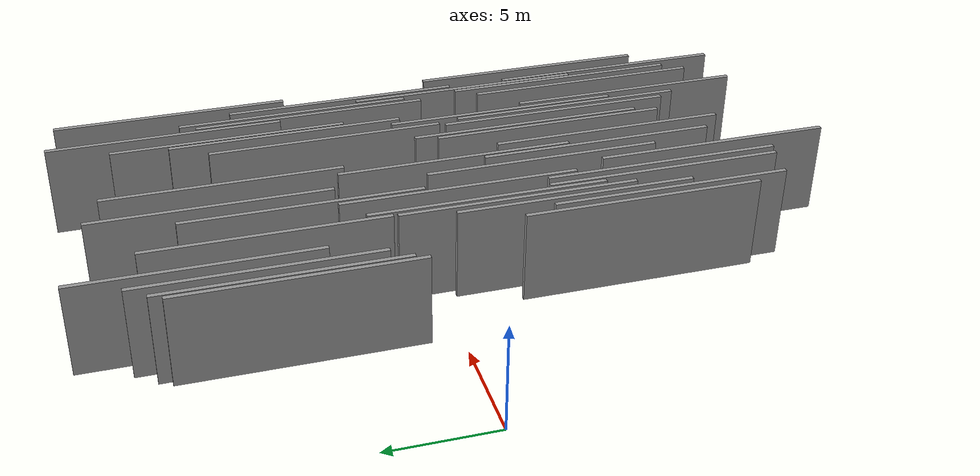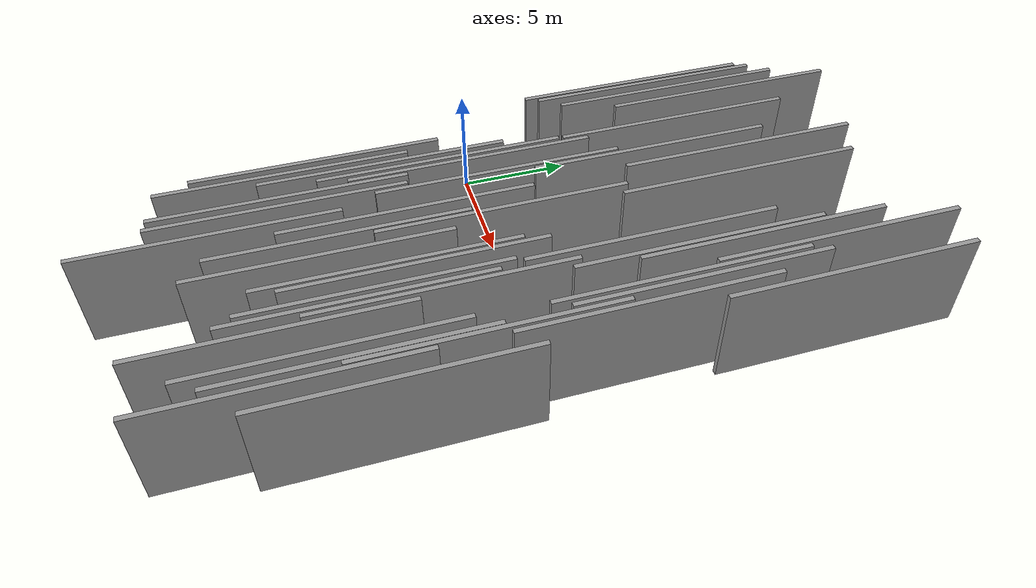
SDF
<sdf version="1.6">
 <world name="default">
  <scene>
   <sky><clouds><speed>12</speed></clouds></sky>
   <ambient>0.4 0.4 0.4 1</ambient>
   <background>0.7 0.7 0.7 1</background>
   <shadows>1</shadows>
  </scene>
  <gravity>0 0 -9.8066</gravity>
  <magnetic_field>6e-06 2.3e-05 -4.2e-05</magnetic_field>
  <physics default="0" name="default_physics" type="ode">
   <ode>
    <solver>
     <type>quick</type>
     <iters>10</iters>
     <sor>1.0</sor>
     <use_dynamic_moi_rescaling>0</use_dynamic_moi_rescaling>
    </solver>
    <constraints>
     <cfm>0</cfm>
     <erp>0.2</erp>
     <contact_max_correcting_vel>100</contact_max_correcting_vel>
     <contact_surface_layer>0.001</contact_surface_layer>
    </constraints>
   </ode>
   <max_step_size>0.004</max_step_size>
   <real_time_factor>1</real_time_factor>
   <real_time_update_rate>250</real_time_update_rate>
  </physics>
  <light name="sun" type="directional">
   <pose>0 0 10 0 0 0</pose>
   <diffuse>0.8 0.8 0.8 1</diffuse>
   <specular>0.2 0.2 0.2 1</specular>
   <attenuation>
    <range>1000</range>
    <constant>0.9</constant>
    <linear>0.01</linear>
    <quadratic>0.001</quadratic>
   </attenuation>
   <direction>-0.5 0.1 -0.9</direction>
  </light>
  <model name="grey_wall_1">
   <static>1</static>
   <pose>5.2713 -8.5533 2.5 0.000000 0.000000 1.570796</pose>
   <link name="link">
    <pose>0 0 2.00 0 0 0</pose>
    <collision name="collision"><geometry><box><size>10.00 0.2 4.00</size></box></geometry></collision>
    <visual name="visual">
     <cast_shadows>0</cast_shadows>
     <geometry><box><size>10.00 0.2 4.00</size></box></geometry>
     <material>
      <script>
       <uri>model://grey_wall/materials/scripts</uri>
       <uri>model://grey_wall/materials/textures</uri>
       <name>vrc/grey_wall</name>
      </script>
     </material>
    </visual>
   </link>
  </model>
  <model name="grey_wall_2">
   <static>1</static>
   <pose>3.8967 8.5115 2.5 0.000000 0.000000 1.570796</pose>
   <link name="link">
    <pose>0 0 2.00 0 0 0</pose>
    <collision name="collision"><geometry><box><size>10.00 0.2 4.00</size></box></geometry></collision>
    <visual name="visual">
     <cast_shadows>0</cast_shadows>
     <geometry><box><size>10.00 0.2 4.00</size></box></geometry>
     <material>
      <script>
       <uri>model://grey_wall/materials/scripts</uri>
       <uri>model://grey_wall/materials/textures</uri>
       <name>vrc/grey_wall</name>
      </script>
     </material>
    </visual>
   </link>
  </model>
  <model name="grey_wall_3">
   <static>1</static>
   <pose>16.6424 10.2966 2.5 0.000000 0.000000 1.570796</pose>
   <link name="link">
    <pose>0 0 2.00 0 0 0</pose>
    <collision name="collision"><geometry><box><size>10.00 0.2 4.00</size></box></geometry></collision>
    <visual name="visual">
     <cast_shadows>0</cast_shadows>
     <geometry><box><size>10.00 0.2 4.00</size></box></geometry>
     <material>
      <script>
       <uri>model://grey_wall/materials/scripts</uri>
       <uri>model://grey_wall/materials/textures</uri>
       <name>vrc/grey_wall</name>
      </script>
     </material>
    </visual>
   </link>
  </model>
  <model name="grey_wall_4">
   <static>1</static>
   <pose>8.7333 9.6387 2.5 0.000000 0.000000 1.570796</pose>
   <link name="link">
    <pose>0 0 2.00 0 0 0</pose>
    <collision name="collision"><geometry><box><size>10.00 0.2 4.00</size></box></geometry></collision>
    <visual name="visual">
     <cast_shadows>0</cast_shadows>
     <geometry><box><size>10.00 0.2 4.00</size></box></geometry>
     <material>
      <script>
       <uri>model://grey_wall/materials/scripts</uri>
       <uri>model://grey_wall/materials/textures</uri>
       <name>vrc/grey_wall</name>
      </script>
     </material>
    </visual>
   </link>
  </model>
  <model name="grey_wall_5">
   <static>1</static>
   <pose>9.7830 -0.7278 2.5 0.000000 0.000000 1.570796</pose>
   <link name="link">
    <pose>0 0 2.00 0 0 0</pose>
    <collision name="collision"><geometry><box><size>10.00 0.2 4.00</size></box></geometry></collision>
    <visual name="visual">
     <cast_shadows>0</cast_shadows>
     <geometry><box><size>10.00 0.2 4.00</size></box></geometry>
     <material>
      <script>
       <uri>model://grey_wall/materials/scripts</uri>
       <uri>model://grey_wall/materials/textures</uri>
       <name>vrc/grey_wall</name>
      </script>
     </material>
    </visual>
   </link>
  </model>
  <model name="grey_wall_6">
   <static>1</static>
   <pose>11.8643 -4.5365 2.5 0.000000 0.000000 1.570796</pose>
   <link name="link">
    <pose>0 0 2.00 0 0 0</pose>
    <collision name="collision"><geometry><box><size>10.00 0.2 4.00</size></box></geometry></collision>
    <visual name="visual">
     <cast_shadows>0</cast_shadows>
     <geometry><box><size>10.00 0.2 4.00</size></box></geometry>
     <material>
      <script>
       <uri>model://grey_wall/materials/scripts</uri>
       <uri>model://grey_wall/materials/textures</uri>
       <name>vrc/grey_wall</name>
      </script>
     </material>
    </visual>
   </link>
  </model>
  <model name="grey_wall_7">
   <static>1</static>
   <pose>9.5290 -6.9343 2.5 0.000000 0.000000 1.570796</pose>
   <link name="link">
    <pose>0 0 2.00 0 0 0</pose>
    <collision name="collision"><geometry><box><size>10.00 0.2 4.00</size></box></geometry></collision>
    <visual name="visual">
     <cast_shadows>0</cast_shadows>
     <geometry><box><size>10.00 0.2 4.00</size></box></geometry>
     <material>
      <script>
       <uri>model://grey_wall/materials/scripts</uri>
       <uri>model://grey_wall/materials/textures</uri>
       <name>vrc/grey_wall</name>
      </script>
     </material>
    </visual>
   </link>
  </model>
  <model name="grey_wall_8">
   <static>1</static>
   <pose>3.0202 7.1427 2.5 0.000000 0.000000 1.570796</pose>
   <link name="link">
    <pose>0 0 2.00 0 0 0</pose>
    <collision name="collision"><geometry><box><size>10.00 0.2 4.00</size></box></geometry></collision>
    <visual name="visual">
     <cast_shadows>0</cast_shadows>
     <geometry><box><size>10.00 0.2 4.00</size></box></geometry>
     <material>
      <script>
       <uri>model://grey_wall/materials/scripts</uri>
       <uri>model://grey_wall/materials/textures</uri>
       <name>vrc/grey_wall</name>
      </script>
     </material>
    </visual>
   </link>
  </model>
  <model name="grey_wall_9">
   <static>1</static>
   <pose>8.1527 -11.6367 2.5 0.000000 0.000000 1.570796</pose>
   <link name="link">
    <pose>0 0 2.00 0 0 0</pose>
    <collision name="collision"><geometry><box><size>10.00 0.2 4.00</size></box></geometry></collision>
    <visual name="visual">
     <cast_shadows>0</cast_shadows>
     <geometry><box><size>10.00 0.2 4.00</size></box></geometry>
     <material>
      <script>
       <uri>model://grey_wall/materials/scripts</uri>
       <uri>model://grey_wall/materials/textures</uri>
       <name>vrc/grey_wall</name>
      </script>
     </material>
    </visual>
   </link>
  </model>
  <model name="grey_wall_10">
   <static>1</static>
   <pose>13.0097 -6.7541 2.5 0.000000 0.000000 1.570796</pose>
   <link name="link">
    <pose>0 0 2.00 0 0 0</pose>
    <collision name="collision"><geometry><box><size>10.00 0.2 4.00</size></box></geometry></collision>
    <visual name="visual">
     <cast_shadows>0</cast_shadows>
     <geometry><box><size>10.00 0.2 4.00</size></box></geometry>
     <material>
      <script>
       <uri>model://grey_wall/materials/scripts</uri>
       <uri>model://grey_wall/materials/textures</uri>
       <name>vrc/grey_wall</name>
      </script>
     </material>
    </visual>
   </link>
  </model>
  <model name="grey_wall_11">
   <static>1</static>
   <pose>12.6420 -6.0958 2.5 0.000000 0.000000 1.570796</pose>
   <link name="link">
    <pose>0 0 2.00 0 0 0</pose>
    <collision name="collision"><geometry><box><size>10.00 0.2 4.00</size></box></geometry></collision>
    <visual name="visual">
     <cast_shadows>0</cast_shadows>
     <geometry><box><size>10.00 0.2 4.00</size></box></geometry>
     <material>
      <script>
       <uri>model://grey_wall/materials/scripts</uri>
       <uri>model://grey_wall/materials/textures</uri>
       <name>vrc/grey_wall</name>
      </script>
     </material>
    </visual>
   </link>
  </model>
  <model name="grey_wall_12">
   <static>1</static>
   <pose>6.7252 -8.8303 2.5 0.000000 0.000000 1.570796</pose>
   <link name="link">
    <pose>0 0 2.00 0 0 0</pose>
    <collision name="collision"><geometry><box><size>10.00 0.2 4.00</size></box></geometry></collision>
    <visual name="visual">
     <cast_shadows>0</cast_shadows>
     <geometry><box><size>10.00 0.2 4.00</size></box></geometry>
     <material>
      <script>
       <uri>model://grey_wall/materials/scripts</uri>
       <uri>model://grey_wall/materials/textures</uri>
       <name>vrc/grey_wall</name>
      </script>
     </material>
    </visual>
   </link>
  </model>
  <model name="grey_wall_13">
   <static>1</static>
   <pose>7.8189 6.1054 2.5 0.000000 0.000000 1.570796</pose>
   <link name="link">
    <pose>0 0 2.00 0 0 0</pose>
    <collision name="collision"><geometry><box><size>10.00 0.2 4.00</size></box></geometry></collision>
    <visual name="visual">
     <cast_shadows>0</cast_shadows>
     <geometry><box><size>10.00 0.2 4.00</size></box></geometry>
     <material>
      <script>
       <uri>model://grey_wall/materials/scripts</uri>
       <uri>model://grey_wall/materials/textures</uri>
       <name>vrc/grey_wall</name>
      </script>
     </material>
    </visual>
   </link>
  </model>
  <model name="grey_wall_14">
   <static>1</static>
   <pose>15.4493 5.0505 2.5 0.000000 0.000000 1.570796</pose>
   <link name="link">
    <pose>0 0 2.00 0 0 0</pose>
    <collision name="collision"><geometry><box><size>10.00 0.2 4.00</size></box></geometry></collision>
    <visual name="visual">
     <cast_shadows>0</cast_shadows>
     <geometry><box><size>10.00 0.2 4.00</size></box></geometry>
     <material>
      <script>
       <uri>model://grey_wall/materials/scripts</uri>
       <uri>model://grey_wall/materials/textures</uri>
       <name>vrc/grey_wall</name>
      </script>
     </material>
    </visual>
   </link>
  </model>
  <model name="grey_wall_15">
   <static>1</static>
   <pose>6.4507 -1.1667 2.5 0.000000 0.000000 1.570796</pose>
   <link name="link">
    <pose>0 0 2.00 0 0 0</pose>
    <collision name="collision"><geometry><box><size>10.00 0.2 4.00</size></box></geometry></collision>
    <visual name="visual">
     <cast_shadows>0</cast_shadows>
     <geometry><box><size>10.00 0.2 4.00</size></box></geometry>
     <material>
      <script>
       <uri>model://grey_wall/materials/scripts</uri>
       <uri>model://grey_wall/materials/textures</uri>
       <name>vrc/grey_wall</name>
      </script>
     </material>
    </visual>
   </link>
  </model>
  <model name="grey_wall_16">
   <static>1</static>
   <pose>16.0371 2.7760 2.5 0.000000 0.000000 1.570796</pose>
   <link name="link">
    <pose>0 0 2.00 0 0 0</pose>
    <collision name="collision"><geometry><box><size>10.00 0.2 4.00</size></box></geometry></collision>
    <visual name="visual">
     <cast_shadows>0</cast_shadows>
     <geometry><box><size>10.00 0.2 4.00</size></box></geometry>
     <material>
      <script>
       <uri>model://grey_wall/materials/scripts</uri>
       <uri>model://grey_wall/materials/textures</uri>
       <name>vrc/grey_wall</name>
      </script>
     </material>
    </visual>
   </link>
  </model>
  <model name="grey_wall_17">
   <static>1</static>
   <pose>5.7087 -4.6302 2.5 0.000000 0.000000 1.570796</pose>
   <link name="link">
    <pose>0 0 2.00 0 0 0</pose>
    <collision name="collision"><geometry><box><size>10.00 0.2 4.00</size></box></geometry></collision>
    <visual name="visual">
     <cast_shadows>0</cast_shadows>
     <geometry><box><size>10.00 0.2 4.00</size></box></geometry>
     <material>
      <script>
       <uri>model://grey_wall/materials/scripts</uri>
       <uri>model://grey_wall/materials/textures</uri>
       <name>vrc/grey_wall</name>
      </script>
     </material>
    </visual>
   </link>
  </model>
  <model name="grey_wall_18">
   <static>1</static>
   <pose>10.4403 -7.7712 2.5 0.000000 0.000000 1.570796</pose>
   <link name="link">
    <pose>0 0 2.00 0 0 0</pose>
    <collision name="collision"><geometry><box><size>10.00 0.2 4.00</size></box></geometry></collision>
    <visual name="visual">
     <cast_shadows>0</cast_shadows>
     <geometry><box><size>10.00 0.2 4.00</size></box></geometry>
     <material>
      <script>
       <uri>model://grey_wall/materials/scripts</uri>
       <uri>model://grey_wall/materials/textures</uri>
       <name>vrc/grey_wall</name>
      </script>
     </material>
    </visual>
   </link>
  </model>
  <model name="grey_wall_19">
   <static>1</static>
   <pose>10.3066 8.9108 2.5 0.000000 0.000000 1.570796</pose>
   <link name="link">
    <pose>0 0 2.00 0 0 0</pose>
    <collision name="collision"><geometry><box><size>10.00 0.2 4.00</size></box></geometry></collision>
    <visual name="visual">
     <cast_shadows>0</cast_shadows>
     <geometry><box><size>10.00 0.2 4.00</size></box></geometry>
     <material>
      <script>
       <uri>model://grey_wall/materials/scripts</uri>
       <uri>model://grey_wall/materials/textures</uri>
       <name>vrc/grey_wall</name>
      </script>
     </material>
    </visual>
   </link>
  </model>
  <model name="grey_wall_20">
   <static>1</static>
   <pose>11.5906 -5.4856 2.5 0.000000 0.000000 1.570796</pose>
   <link name="link">
    <pose>0 0 2.00 0 0 0</pose>
    <collision name="collision"><geometry><box><size>10.00 0.2 4.00</size></box></geometry></collision>
    <visual name="visual">
     <cast_shadows>0</cast_shadows>
     <geometry><box><size>10.00 0.2 4.00</size></box></geometry>
     <material>
      <script>
       <uri>model://grey_wall/materials/scripts</uri>
       <uri>model://grey_wall/materials/textures</uri>
       <name>vrc/grey_wall</name>
      </script>
     </material>
    </visual>
   </link>
  </model>
  <model name="grey_wall_21">
   <static>1</static>
   <pose>14.9636 -8.2210 2.5 0.000000 0.000000 1.570796</pose>
   <link name="link">
    <pose>0 0 2.00 0 0 0</pose>
    <collision name="collision"><geometry><box><size>10.00 0.2 4.00</size></box></geometry></collision>
    <visual name="visual">
     <cast_shadows>0</cast_shadows>
     <geometry><box><size>10.00 0.2 4.00</size></box></geometry>
     <material>
      <script>
       <uri>model://grey_wall/materials/scripts</uri>
       <uri>model://grey_wall/materials/textures</uri>
       <name>vrc/grey_wall</name>
      </script>
     </material>
    </visual>
   </link>
  </model>
  <model name="grey_wall_22">
   <static>1</static>
   <pose>6.1634 7.8232 2.5 0.000000 0.000000 1.570796</pose>
   <link name="link">
    <pose>0 0 2.00 0 0 0</pose>
    <collision name="collision"><geometry><box><size>10.00 0.2 4.00</size></box></geometry></collision>
    <visual name="visual">
     <cast_shadows>0</cast_shadows>
     <geometry><box><size>10.00 0.2 4.00</size></box></geometry>
     <material>
      <script>
       <uri>model://grey_wall/materials/scripts</uri>
       <uri>model://grey_wall/materials/textures</uri>
       <name>vrc/grey_wall</name>
      </script>
     </material>
    </visual>
   </link>
  </model>
  <model name="grey_wall_23">
   <static>1</static>
   <pose>7.5373 -0.2787 2.5 0.000000 0.000000 1.570796</pose>
   <link name="link">
    <pose>0 0 2.00 0 0 0</pose>
    <collision name="collision"><geometry><box><size>10.00 0.2 4.00</size></box></geometry></collision>
    <visual name="visual">
     <cast_shadows>0</cast_shadows>
     <geometry><box><size>10.00 0.2 4.00</size></box></geometry>
     <material>
      <script>
       <uri>model://grey_wall/materials/scripts</uri>
       <uri>model://grey_wall/materials/textures</uri>
       <name>vrc/grey_wall</name>
      </script>
     </material>
    </visual>
   </link>
  </model>
  <model name="grey_wall_24">
   <static>1</static>
   <pose>13.6921 5.7042 2.5 0.000000 0.000000 1.570796</pose>
   <link name="link">
    <pose>0 0 2.00 0 0 0</pose>
    <collision name="collision"><geometry><box><size>10.00 0.2 4.00</size></box></geometry></collision>
    <visual name="visual">
     <cast_shadows>0</cast_shadows>
     <geometry><box><size>10.00 0.2 4.00</size></box></geometry>
     <material>
      <script>
       <uri>model://grey_wall/materials/scripts</uri>
       <uri>model://grey_wall/materials/textures</uri>
       <name>vrc/grey_wall</name>
      </script>
     </material>
    </visual>
   </link>
  </model>
  <model name="grey_wall_25">
   <static>1</static>
   <pose>13.2804 -3.8519 2.5 0.000000 0.000000 1.570796</pose>
   <link name="link">
    <pose>0 0 2.00 0 0 0</pose>
    <collision name="collision"><geometry><box><size>10.00 0.2 4.00</size></box></geometry></collision>
    <visual name="visual">
     <cast_shadows>0</cast_shadows>
     <geometry><box><size>10.00 0.2 4.00</size></box></geometry>
     <material>
      <script>
       <uri>model://grey_wall/materials/scripts</uri>
       <uri>model://grey_wall/materials/textures</uri>
       <name>vrc/grey_wall</name>
      </script>
     </material>
    </visual>
   </link>
  </model>
  <model name="grey_wall_26">
   <static>1</static>
   <pose>7.2387 -8.9486 2.5 0.000000 0.000000 1.570796</pose>
   <link name="link">
    <pose>0 0 2.00 0 0 0</pose>
    <collision name="collision"><geometry><box><size>10.00 0.2 4.00</size></box></geometry></collision>
    <visual name="visual">
     <cast_shadows>0</cast_shadows>
     <geometry><box><size>10.00 0.2 4.00</size></box></geometry>
     <material>
      <script>
       <uri>model://grey_wall/materials/scripts</uri>
       <uri>model://grey_wall/materials/textures</uri>
       <name>vrc/grey_wall</name>
      </script>
     </material>
    </visual>
   </link>
  </model>
  <model name="grey_wall_27">
   <static>1</static>
   <pose>15.7401 -2.8285 2.5 0.000000 0.000000 1.570796</pose>
   <link name="link">
    <pose>0 0 2.00 0 0 0</pose>
    <collision name="collision"><geometry><box><size>10.00 0.2 4.00</size></box></geometry></collision>
    <visual name="visual">
     <cast_shadows>0</cast_shadows>
     <geometry><box><size>10.00 0.2 4.00</size></box></geometry>
     <material>
      <script>
       <uri>model://grey_wall/materials/scripts</uri>
       <uri>model://grey_wall/materials/textures</uri>
       <name>vrc/grey_wall</name>
      </script>
     </material>
    </visual>
   </link>
  </model>
  <model name="grey_wall_28">
   <static>1</static>
   <pose>12.8195 4.1362 2.5 0.000000 0.000000 1.570796</pose>
   <link name="link">
    <pose>0 0 2.00 0 0 0</pose>
    <collision name="collision"><geometry><box><size>10.00 0.2 4.00</size></box></geometry></collision>
    <visual name="visual">
     <cast_shadows>0</cast_shadows>
     <geometry><box><size>10.00 0.2 4.00</size></box></geometry>
     <material>
      <script>
       <uri>model://grey_wall/materials/scripts</uri>
       <uri>model://grey_wall/materials/textures</uri>
       <name>vrc/grey_wall</name>
      </script>
     </material>
    </visual>
   </link>
  </model>
  <model name="grey_wall_29">
   <static>1</static>
   <pose>4.7874 -7.1767 2.5 0.000000 0.000000 1.570796</pose>
   <link name="link">
    <pose>0 0 2.00 0 0 0</pose>
    <collision name="collision"><geometry><box><size>10.00 0.2 4.00</size></box></geometry></collision>
    <visual name="visual">
     <cast_shadows>0</cast_shadows>
     <geometry><box><size>10.00 0.2 4.00</size></box></geometry>
     <material>
      <script>
       <uri>model://grey_wall/materials/scripts</uri>
       <uri>model://grey_wall/materials/textures</uri>
       <name>vrc/grey_wall</name>
      </script>
     </material>
    </visual>
   </link>
  </model>
  <model name="grey_wall_30">
   <static>1</static>
   <pose>3.2756 7.6736 2.5 0.000000 0.000000 1.570796</pose>
   <link name="link">
    <pose>0 0 2.00 0 0 0</pose>
    <collision name="collision"><geometry><box><size>10.00 0.2 4.00</size></box></geometry></collision>
    <visual name="visual">
     <cast_shadows>0</cast_shadows>
     <geometry><box><size>10.00 0.2 4.00</size></box></geometry>
     <material>
      <script>
       <uri>model://grey_wall/materials/scripts</uri>
       <uri>model://grey_wall/materials/textures</uri>
       <name>vrc/grey_wall</name>
      </script>
     </material>
    </visual>
   </link>
  </model>
  <model name="grey_wall_31">
   <static>1</static>
   <pose>4.6607 10.7076 2.5 0.000000 0.000000 1.570796</pose>
   <link name="link">
    <pose>0 0 2.00 0 0 0</pose>
    <collision name="collision"><geometry><box><size>10.00 0.2 4.00</size></box></geometry></collision>
    <visual name="visual">
     <cast_shadows>0</cast_shadows>
     <geometry><box><size>10.00 0.2 4.00</size></box></geometry>
     <material>
      <script>
       <uri>model://grey_wall/materials/scripts</uri>
       <uri>model://grey_wall/materials/textures</uri>
       <name>vrc/grey_wall</name>
      </script>
     </material>
    </visual>
   </link>
  </model>
  <model name="grey_wall_32">
   <static>1</static>
   <pose>15.9786 -9.7247 2.5 0.000000 0.000000 1.570796</pose>
   <link name="link">
    <pose>0 0 2.00 0 0 0</pose>
    <collision name="collision"><geometry><box><size>10.00 0.2 4.00</size></box></geometry></collision>
    <visual name="visual">
     <cast_shadows>0</cast_shadows>
     <geometry><box><size>10.00 0.2 4.00</size></box></geometry>
     <material>
      <script>
       <uri>model://grey_wall/materials/scripts</uri>
       <uri>model://grey_wall/materials/textures</uri>
       <name>vrc/grey_wall</name>
      </script>
     </material>
    </visual>
   </link>
  </model>
  <model name="grey_wall_33">
   <static>1</static>
   <pose>8.8136 -4.2513 2.5 0.000000 0.000000 1.570796</pose>
   <link name="link">
    <pose>0 0 2.00 0 0 0</pose>
    <collision name="collision"><geometry><box><size>10.00 0.2 4.00</size></box></geometry></collision>
    <visual name="visual">
     <cast_shadows>0</cast_shadows>
     <geometry><box><size>10.00 0.2 4.00</size></box></geometry>
     <material>
      <script>
       <uri>model://grey_wall/materials/scripts</uri>
       <uri>model://grey_wall/materials/textures</uri>
       <name>vrc/grey_wall</name>
      </script>
     </material>
    </visual>
   </link>
  </model>
  <model name="grey_wall_34">
   <static>1</static>
   <pose>14.8475 10.7508 2.5 0.000000 0.000000 1.570796</pose>
   <link name="link">
    <pose>0 0 2.00 0 0 0</pose>
    <collision name="collision"><geometry><box><size>10.00 0.2 4.00</size></box></geometry></collision>
    <visual name="visual">
     <cast_shadows>0</cast_shadows>
     <geometry><box><size>10.00 0.2 4.00</size></box></geometry>
     <material>
      <script>
       <uri>model://grey_wall/materials/scripts</uri>
       <uri>model://grey_wall/materials/textures</uri>
       <name>vrc/grey_wall</name>
      </script>
     </material>
    </visual>
   </link>
  </model>
  <model name="grey_wall_35">
   <static>1</static>
   <pose>13.6410 -9.7942 2.5 0.000000 0.000000 1.570796</pose>
   <link name="link">
    <pose>0 0 2.00 0 0 0</pose>
    <collision name="collision"><geometry><box><size>10.00 0.2 4.00</size></box></geometry></collision>
    <visual name="visual">
     <cast_shadows>0</cast_shadows>
     <geometry><box><size>10.00 0.2 4.00</size></box></geometry>
     <material>
      <script>
       <uri>model://grey_wall/materials/scripts</uri>
       <uri>model://grey_wall/materials/textures</uri>
       <name>vrc/grey_wall</name>
      </script>
     </material>
    </visual>
   </link>
  </model>
  <model name="grey_wall_36">
   <static>1</static>
   <pose>15.5293 -7.3405 2.5 0.000000 0.000000 1.570796</pose>
   <link name="link">
    <pose>0 0 2.00 0 0 0</pose>
    <collision name="collision"><geometry><box><size>10.00 0.2 4.00</size></box></geometry></collision>
    <visual name="visual">
     <cast_shadows>0</cast_shadows>
     <geometry><box><size>10.00 0.2 4.00</size></box></geometry>
     <material>
      <script>
       <uri>model://grey_wall/materials/scripts</uri>
       <uri>model://grey_wall/materials/textures</uri>
       <name>vrc/grey_wall</name>
      </script>
     </material>
    </visual>
   </link>
  </model>
  <model name="grey_wall_37">
   <static>1</static>
   <pose>16.8328 -6.2084 2.5 0.000000 0.000000 1.570796</pose>
   <link name="link">
    <pose>0 0 2.00 0 0 0</pose>
    <collision name="collision"><geometry><box><size>10.00 0.2 4.00</size></box></geometry></collision>
    <visual name="visual">
     <cast_shadows>0</cast_shadows>
     <geometry><box><size>10.00 0.2 4.00</size></box></geometry>
     <material>
      <script>
       <uri>model://grey_wall/materials/scripts</uri>
       <uri>model://grey_wall/materials/textures</uri>
       <name>vrc/grey_wall</name>
      </script>
     </material>
    </visual>
   </link>
  </model>
  <model name="grey_wall_38">
   <static>1</static>
   <pose>6.1279 -2.3520 2.5 0.000000 0.000000 1.570796</pose>
   <link name="link">
    <pose>0 0 2.00 0 0 0</pose>
    <collision name="collision"><geometry><box><size>10.00 0.2 4.00</size></box></geometry></collision>
    <visual name="visual">
     <cast_shadows>0</cast_shadows>
     <geometry><box><size>10.00 0.2 4.00</size></box></geometry>
     <material>
      <script>
       <uri>model://grey_wall/materials/scripts</uri>
       <uri>model://grey_wall/materials/textures</uri>
       <name>vrc/grey_wall</name>
      </script>
     </material>
    </visual>
   </link>
  </model>
  <model name="grey_wall_39">
   <static>1</static>
   <pose>13.9327 8.1411 2.5 0.000000 0.000000 1.570796</pose>
   <link name="link">
    <pose>0 0 2.00 0 0 0</pose>
    <collision name="collision"><geometry><box><size>10.00 0.2 4.00</size></box></geometry></collision>
    <visual name="visual">
     <cast_shadows>0</cast_shadows>
     <geometry><box><size>10.00 0.2 4.00</size></box></geometry>
     <material>
      <script>
       <uri>model://grey_wall/materials/scripts</uri>
       <uri>model://grey_wall/materials/textures</uri>
       <name>vrc/grey_wall</name>
      </script>
     </material>
    </visual>
   </link>
  </model>
  <model name="grey_wall_40">
   <static>1</static>
   <pose>15.1204 4.3725 2.5 0.000000 0.000000 1.570796</pose>
   <link name="link">
    <pose>0 0 2.00 0 0 0</pose>
    <collision name="collision"><geometry><box><size>10.00 0.2 4.00</size></box></geometry></collision>
    <visual name="visual">
     <cast_shadows>0</cast_shadows>
     <geometry><box><size>10.00 0.2 4.00</size></box></geometry>
     <material>
      <script>
       <uri>model://grey_wall/materials/scripts</uri>
       <uri>model://grey_wall/materials/textures</uri>
       <name>vrc/grey_wall</name>
      </script>
     </material>
    </visual>
   </link>
  </model>
 </world>
</sdf>
